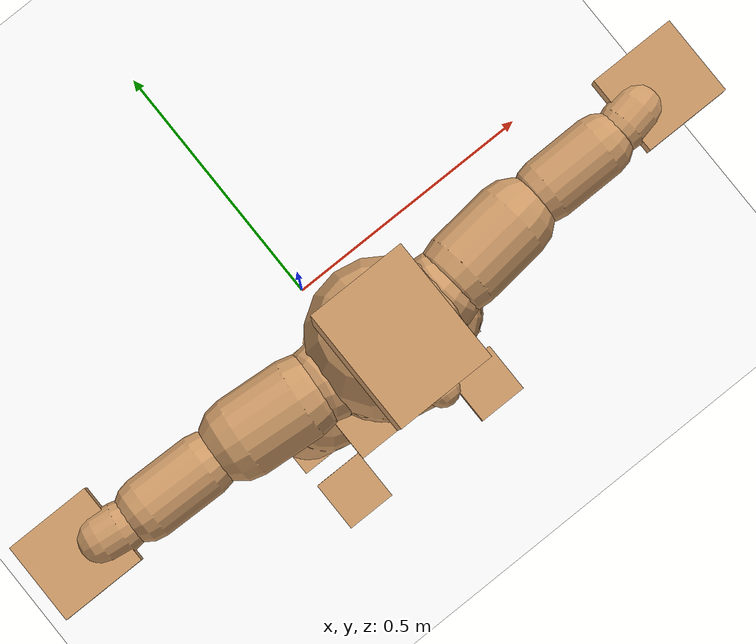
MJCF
<mujoco model="humanoid">
  <option integrator="implicitfast" />

  <visual>
    <global offwidth="1280" offheight="960" />
    <headlight active="1" ambient="0.34 0.34 0.34" diffuse="0.5 0.5 0.5" />
  </visual>

  <default>
    <joint damping="2" stiffness="2" armature="0.01" limited="true" solimplimit="0 .99 .01" />
    <geom condim="1" friction="0.7 0.005 0.0001" solimp=".99 .99 .003" solref="0.015 1" margin="0.001" rgba="0.8 0.6 .4 1" />
    <default class="smplcontact">
      <geom condim="3" friction="1. 0.005 0.0001" solref="0.015 1" solimp="0.98 0.98 0.001" priority="1" />
    </default>
    <default class="stiff_medium">
      <joint stiffness="10" />
    </default>
    <default class="stiff_medium_higher">
      <joint stiffness="50" />
    </default>
    <default class="stiff_high">
      <joint stiffness="100" />
    </default>
  </default>

  <asset>
    <texture type="skybox" builtin="gradient" rgb1="0.99 0.99 0.99" rgb2="0.608 0.828 0.892" width="100" />
    <texture builtin="flat" height="1278" mark="cross" markrgb="1 1 1" name="texgeom" random="0.01" rgb1="0.8 0.6 0.4" rgb2="0.8 0.6 0.4" type="cube" width="127" />
    <texture name="texplane" type="2d" builtin="checker" markrgb="1 1 1" rgb1="0.756 0.772 0.76" rgb2="0.6 0.6 0.6" width="100" height="100" />
    <material name="MatPlane" reflectance="0.5" texture="texplane" texrepeat="1 1" texuniform="true" />
    <material name="geom" texture="texgeom" texuniform="true" />
  </asset>

  <worldbody>
    <light name="tracking_light" pos="0 0 7" dir="0 0 -1" directional="true" cutoff="100" exponent="1" diffuse="1 1 1" specular="0.1 0.1 0.1" mode="trackcom" />
    <camera name="back" pos="0 3 2.4" xyaxes="-1 0 0 0 -1 2" mode="trackcom" />
    <camera name="side" pos="-3 0 2.4" xyaxes="0 -1 0 1 0 2" mode="trackcom" />
    <camera name="front_side" pos="-2.8 -2.8 0.8" xyaxes="0.5 -0.5 0 0.1 0.1 1" mode="trackcom" />
    <geom condim="3" name="floor" pos="0 0 0" rgba="1 1 1 1" size="100 100 .2" type="plane" material="MatPlane" />
    <body name="Pelvis" pos="-0.0018 -0.2233 1.27986" euler="90 0 0">
      <site name="Pelvis" size="0.01" />
      <freejoint name="Pelvis" />
      <geom type="box" pos="-0.0000 -0.0121 -0.0055" size="0.1069 0.0722 0.083" quat="1.0000 0.0000 0.0000 0.0000" density="3165.830099" name="Pelvis" />
      <body name="L_Hip" pos="0.0955625 -0.125675 -0.00935">
        <joint name="L_Hip_x" type="hinge" pos="0 0 0" axis="1 0 0" stiffness="17.19824030612245" range="-160.0 22.92" class="stiff_medium" damping="29.629361290924336" armature="0.022687051049198843"/>
        <joint name="L_Hip_y" type="hinge" pos="0 0 0" axis="0 1 0" stiffness="17.095561632653062" range="-70.0 70.0" class="stiff_medium" damping="16.759236135916318" armature="0.016429527259457153"/>
        <joint name="L_Hip_z" type="hinge" pos="0 0 0" axis="0 0 1" stiffness="17.10435142857143" range="-28.65 90.0" class="stiff_medium" damping="19.702841471961815" armature="0.02269609366308965"/>
        <geom type="capsule" density="2040.816327" fromto="0.0094875 -0.103125 -0.0012375 0.037675 -0.412775 -0.00495" size="0.0615" name="L_Hip" />
        <body name="L_Knee" pos="0.0471625 -0.5159 -0.0061875">
          <joint name="L_Knee_x" type="hinge" pos="0 0 0" axis="1 0 0" range="-5.16 171.89" damping="15.062760794577006" armature="0.021343797365827914" stiffness="3.321907163265306"/>
          <joint name="L_Knee_y" type="hinge" pos="0 0 0" axis="0 1 0" range="-4.58 6.88" damping="12.945965232871577" armature="0.015441578364462112" stiffness="3.3917763265306125"/>
          <joint name="L_Knee_z" type="hinge" pos="0 0 0" axis="0 0 1" range="-6.88 4.58" damping="15.006918060065544" armature="0.02138423024615954" stiffness="3.2910874489795923"/>
          <geom type="capsule" density="1234.567901" fromto="-0.0037125 -0.10945 -0.0119625 -0.0149875 -0.4378 -0.048125" size="0.0541" name="L_Knee" />
          <body name="L_Ankle" pos="-0.0187 -0.54725 -0.0600875">
            <joint name="L_Ankle_x" type="hinge" pos="0 0 0" axis="1 0 0" range="-45.84 45.84" class="stiff_medium" damping="8.859849432432505" armature="0.015857944517404375" stiffness="13.750018673469388"/>
            <joint name="L_Ankle_y" type="hinge" pos="0 0 0" axis="0 1 0" range="-74.48 22.92" class="stiff_medium" damping="4.399379468505368" armature="0.015640018623433522" stiffness="13.750011836734695"/>
            <joint name="L_Ankle_z" type="hinge" pos="0 0 0" axis="0 0 1" range="-4.58 4.58" class="stiff_medium" damping="8.387836414113991" armature="0.014213292870694269" stiffness="13.75"/>
            <geom type="box" pos="0.0320375 -0.0328625 0.033275" size="0.0483 0.0464 0.085" quat="1.0000 0.0000 0.0000 0.0000" density="449.071558" name="L_Ankle" class="smplcontact" />
            <body name="L_Toe" pos="0.0363 -0.076725 0.164038">
              <joint name="L_Toe_x" type="hinge" pos="0 0 0" axis="1 0 0" range="-91.67 22.92" armature="0.013386048586152648" damping="2.713360779989266" stiffness="2.75"/>
              <joint name="L_Toe_y" type="hinge" pos="0 0 0" axis="0 1 0" range="-4.58 4.58" armature="0.012385744586589299" damping="2.610011402776646" stiffness="2.75"/>
              <joint name="L_Toe_z" type="hinge" pos="0 0 0" axis="0 0 1" range="-4.58 4.58" armature="0.010363183740582413" damping="2.3874151413862497" stiffness="2.75"/>
              <geom type="box" pos="-0.004125 0.0075625 0.0341" size="0.0478 0.02 0.0496" quat="1.0000 0.0000 0.0000 0.0000" density="423.206892" name="L_Toe" class="smplcontact" />
            </body>
          </body>
        </body>
      </body>
      <body name="R_Hip" pos="-0.0930875 -0.124437 -0.0059125">
        <joint name="R_Hip_x" type="hinge" pos="0 0 0" axis="1 0 0" stiffness="17.19824030612245" range="-160.0 22.92" class="stiff_medium" damping="29.629361290924336" armature="0.022687051049198843"/>
        <joint name="R_Hip_y" type="hinge" pos="0 0 0" axis="0 1 0" stiffness="17.095561632653062" range="-70.0 70.0" class="stiff_medium" damping="16.759236135916318" armature="0.016429527259457153"/>
        <joint name="R_Hip_z" type="hinge" pos="0 0 0" axis="0 0 1" stiffness="17.10435142857143" range="-90.0 28.65" class="stiff_medium" damping="19.702841471961815" armature="0.02269609366308965"/>
        <geom type="capsule" density="2040.816327" fromto="-0.0105875 -0.105188 -0.002475 -0.042075 -0.420887 -0.0097625" size="0.0606" name="R_Hip" />
        <body name="R_Knee" pos="-0.0526625 -0.526075 -0.0122375">
          <joint name="R_Knee_x" type="hinge" pos="0 0 0" axis="1 0 0" range="-5.16 171.89" damping="15.062760794577006" armature="0.021343797365827914" stiffness="3.321907163265306"/>
          <joint name="R_Knee_y" type="hinge" pos="0 0 0" axis="0 1 0" range="-6.88 4.58" damping="12.945965232871577" armature="0.015441578364462112" stiffness="3.3917763265306125"/>
          <joint name="R_Knee_z" type="hinge" pos="0 0 0" axis="0 0 1" range="-4.58 6.88" damping="15.006918060065544" armature="0.02138423024615954" stiffness="3.2910874489795923"/>
          <geom type="capsule" density="1234.567901" fromto="0.0044 -0.109587 -0.0116875 0.017325 -0.438213 -0.046475" size="0.0541" name="R_Knee" />
          <body name="R_Ankle" pos="0.021725 -0.5478 -0.0581625">
            <joint name="R_Ankle_x" type="hinge" pos="0 0 0" axis="1 0 0" range="-45.84 45.84" class="stiff_medium" damping="8.859849432432505" armature="0.015857944517404375" stiffness="13.750018673469388"/>
            <joint name="R_Ankle_y" type="hinge" pos="0 0 0" axis="0 1 0" range="-22.92 74.48" class="stiff_medium" damping="4.399379468505368" armature="0.015640018623433522" stiffness="13.750011836734695"/>
            <joint name="R_Ankle_z" type="hinge" pos="0 0 0" axis="0 0 1" range="-4.58 4.58" class="stiff_medium" damping="8.387836414113991" armature="0.014213292870694269" stiffness="13.75"/>
            <geom type="box" pos="-0.02915 -0.023925 0.0352" size="0.0483 0.0478 0.0865" quat="1.0000 0.0000 0.0000 0.0000" density="434.700981" name="R_Ankle" class="smplcontact" />
            <body name="R_Toe" pos="-0.034925 -0.0661375 0.169538">
              <joint name="R_Toe_x" type="hinge" pos="0 0 0" axis="1 0 0" range="-91.67 22.92" armature="0.013386048586152648" damping="2.713360779989266" stiffness="2.75"/>
              <joint name="R_Toe_y" type="hinge" pos="0 0 0" axis="0 1 0" range="-4.58 4.58" armature="0.012385744586589299" damping="2.610011402776646" stiffness="2.75"/>
              <joint name="R_Toe_z" type="hinge" pos="0 0 0" axis="0 0 1" range="-4.58 4.58" armature="0.010363183740582413" damping="2.3874151413862497" stiffness="2.75"/>
              <geom type="box" pos="0.005775 0.0061875 0.0312125" size="0.0479 0.0216 0.0493" quat="1.0000 0.0000 0.0000 0.0000" density="407.384095" name="R_Toe" class="smplcontact" />
            </body>
          </body>
        </body>
      </body>
      <body name="Torso" pos="-0.0025 0.109 -0.0267">
        <joint name="Torso_x" type="hinge" pos="0 0 0" axis="1 0 0" range="-25.78 57.3" class="stiff_medium" damping="12.833128643120638" armature="0.0083898677557267" stiffness="8.724237142857143"/>
        <joint name="Torso_y" type="hinge" pos="0 0 0" axis="0 1 0" range="-57.3 57.3" class="stiff_high" damping="9.641007877053582" armature="0.0026152511802961754" stiffness="88.85287346938776"/>
        <joint name="Torso_z" type="hinge" pos="0 0 0" axis="0 0 1" range="-34.38 34.38" class="stiff_high" damping="15.256621848072813" armature="0.006404603814601962" stiffness="90.85827826086955"/>
        <geom type="capsule" density="2040.816327" fromto="0.0025 0.0608 0.0005 0.003 0.0743 0.0006" size="0.0769" name="Torso" />
        <body name="Spine" pos="0.0055 0.1352 0.0011">
          <joint name="Spine_x" type="hinge" pos="0 0 0" axis="1 0 0" stiffness="8.524132708333333" range="-25.78 57.3" class="stiff_medium" damping="12.593328186154574" armature="0.008268911088118518"/>
          <joint name="Spine_y" type="hinge" pos="0 0 0" axis="0 1 0" stiffness="8.372724772727274" range="-57.3 57.3" class="stiff_high" damping="3.7058359647278705" armature="0.002562864197858745"/>
          <joint name="Spine_z" type="hinge" pos="0 0 0" axis="0 0 1" stiffness="17.091765581395343" range="-34.38 34.38" class="stiff_high" damping="7.912330782724081" armature="0.005087324565503504"/>
          <geom type="capsule" density="2040.816327" fromto="0.0007 0.0238 0.0114 0.0008 0.0291 0.014" size="0.0755" name="Spine" />
          <body name="Chest" pos="0.0015 0.0529 0.0254">
            <joint name="Chest_x" type="hinge" pos="0 0 0" axis="1 0 0" stiffness="8.200278372093024" range="-25.78 57.3" class="stiff_medium" damping="12.319816615498848" armature="0.008226164178146714"/>
            <joint name="Chest_y" type="hinge" pos="0 0 0" axis="0 1 0" stiffness="6.66116392857143" range="-57.3 57.3" class="stiff_high" damping="3.2862373670032503" armature="0.002533189992228513"/>
            <joint name="Chest_z" type="hinge" pos="0 0 0" axis="0 0 1" stiffness="16.64932651162791" range="-34.38 34.38" class="stiff_high" damping="7.3605142625327895" armature="0.0045194662788371"/>
            <geom type="capsule" density="2040.816327" fromto="-0.0009 0.0682 -0.0173 -0.001 0.0833 -0.0212" size="0.1002" name="Chest" />
            <body name="Neck" pos="-0.0028 0.2139 -0.0429">
              <joint name="Neck_x" type="hinge" pos="0 0 0" axis="1 0 0" range="-28.65 57.3" class="stiff_medium_higher" damping="10.000000000000032" armature="0.010000000000000064" stiffness="50.0"/>
              <joint name="Neck_y" type="hinge" pos="0 0 0" axis="0 1 0" range="-40.11 40.11" class="stiff_medium_higher" damping="10.0" armature="0.01" stiffness="50.0"/>
              <joint name="Neck_z" type="hinge" pos="0 0 0" axis="0 0 1" range="-40.11 40.11" class="stiff_medium_higher" damping="10.000000000000025" armature="0.01000000000000005" stiffness="50.0"/>
              <geom type="capsule" density="1000" fromto="0.001 0.013 0.0103 0.0041 0.052 0.0411" size="0.0436" name="Neck" />
              <body name="Head" pos="0.0052 0.065 0.0513">
                <joint name="Head_x" type="hinge" pos="0 0 0" axis="1 0 0" range="-28.65 57.3" class="stiff_medium_higher" damping="2.000000000000006" armature="0.010000000000000064" stiffness="50.0"/>
                <joint name="Head_y" type="hinge" pos="0 0 0" axis="0 1 0" range="-40.11 40.11" class="stiff_medium_higher" damping="2.0" armature="0.01" stiffness="50.0"/>
                <joint name="Head_z" type="hinge" pos="0 0 0" axis="0 0 1" range="-40.11 40.11" class="stiff_medium_higher" damping="2.0000000000000036" armature="0.010000000000000038" stiffness="50.0"/>
                <geom type="box" pos="-0.0042 0.0876 -0.0116" size="0.0606 0.1154 0.076" quat="1.0000 0.0000 0.0000 0.0000" density="1018.069894" name="Head" />
                <geom type="capsule" name="nose" size="0.02 0.01" pos="0 0.07 0.05" quat="1 0 0 0" mass="0" contype="0" conaffinity="0" />
              </body>
            </body>
            <body name="L_Thorax" pos="0.04334 0.066935 -0.018755">
              <joint name="L_Thorax_x" type="hinge" pos="0 0 0" axis="1 0 0" range="-10.89 4.58" class="stiff_medium_higher" damping="8.434703621562761" armature="0.004456108006307092" stiffness="19.956940306122444"/>
              <joint name="L_Thorax_y" type="hinge" pos="0 0 0" axis="0 1 0" range="-28.65 17.19" class="stiff_medium_higher" damping="6.022763730189365" armature="0.0023084620474975955" stiffness="19.641693367346935"/>
              <joint name="L_Thorax_z" type="hinge" pos="0 0 0" axis="0 0 1" range="-31.51 40.11" class="stiff_medium_higher" damping="6.0206596523268665" armature="0.0023064402545495094" stiffness="19.64517755102041"/>
              <geom type="capsule" density="1000" fromto="0.01001 0.003355 -0.00099 0.04004 0.01342 -0.003905" size="0.0521" name="L_Thorax" />
              <body name="L_Shoulder" pos="0.05005 0.016775 -0.004895">
                <joint name="L_Shoulder_x" type="hinge" pos="0 0 0" axis="1 0 0" range="-97.4 97.4" class="stiff_medium" damping="2.750732619270327" armature="0.005207580254125512" stiffness="4.036066215805471"/>
                <joint name="L_Shoulder_y" type="hinge" pos="0 0 0" axis="0 1 0" range="-108.86 80.21" class="stiff_medium" damping="1.829876722109635" armature="0.0023536822566645396" stiffness="3.9517852040816326"/>
                <joint name="L_Shoulder_z" type="hinge" pos="0 0 0" axis="0 0 1" range="-97.4 85.94" class="stiff_medium" damping="1.829909535734246" armature="0.0023507489222583896" stiffness="3.9568582653061224"/>
                <geom type="capsule" density="1000" fromto="0.028545 -0.00143 -0.003025 0.114235 -0.00561 -0.0121" size="0.0517" name="L_Shoulder" />
                <body name="L_Elbow" pos="0.14278 -0.00704 -0.015125">
                  <joint name="L_Elbow_x" type="hinge" pos="0 0 0" axis="1 0 0" range="-17.19 4.58" damping="2.6383809861162275" armature="0.006602890217626931" stiffness="0.8433948163265306"/>
                  <joint name="L_Elbow_y" type="hinge" pos="0 0 0" axis="0 1 0" range="-180.0 17.19" damping="1.6493311800762034" armature="0.0025828362461048178" stiffness="0.842575551020408"/>
                  <joint name="L_Elbow_z" type="hinge" pos="0 0 0" axis="0 0 1" range="-100.84 4.58" damping="1.6457692537144128" armature="0.0025674453810837178" stiffness="0.8439693265306122"/>
                  <geom type="capsule" density="1000" fromto="0.02739 0.00099 -0.00011 0.10967 0.00396 -0.000495" size="0.0405" name="L_Elbow" />
                  <body name="L_Wrist" pos="0.13706 0.00495 -0.00066">
                    <joint name="L_Wrist_x" type="hinge" pos="0 0 0" axis="1 0 0" range="-180.0 22.92" armature="0.0074618343952390885" damping="1.2279494204587658" stiffness="1.0103814285714288"/>
                    <joint name="L_Wrist_y" type="hinge" pos="0 0 0" axis="0 1 0" range="-17.19 17.19" armature="0.003664915616612734" damping="0.8549575346764083" stiffness="0.9972294897959184"/>
                    <joint name="L_Wrist_z" type="hinge" pos="0 0 0" axis="0 0 1" range="-22.92 22.92" armature="0.003441422269276174" damping="0.8306797080467456" stiffness="1.002534306122449"/>
                    <geom type="capsule" density="1000" fromto="0.00924 -0.00088 -0.00165 0.03696 -0.003575 -0.0066" size="0.0318" name="L_Wrist" class="smplcontact" />
                    <body name="L_Hand" pos="0.0462 -0.00451 -0.008195">
                      <joint name="L_Hand_x" type="hinge" pos="0 0 0" axis="1 0 0" range="-17.19 17.19" armature="0.009696126030368896" damping="1.4605299472044921" stiffness="1.0999999999999999"/>
                      <joint name="L_Hand_y" type="hinge" pos="0 0 0" axis="0 1 0" range="-51.57 51.57" armature="0.006325063576496694" damping="1.1796245109479848" stiffness="1.0999999999999999"/>
                      <joint name="L_Hand_z" type="hinge" pos="0 0 0" axis="0 0 1" range="-91.67 91.67" armature="0.005426460820316714" damping="1.0926213344382751" stiffness="1.0999999999999999"/>
                      <geom type="box" pos="0.027115 0.00055 -0.00319" size="0.0585 0.0158 0.0538" quat="1.0000 0.0000 0.0000 0.0000" density="400.552564" name="L_Hand" class="smplcontact" />
                    </body>
                  </body>
                </body>
              </body>
            </body>
            <body name="R_Thorax" pos="-0.04499 0.06534 -0.02123">
              <joint name="R_Thorax_x" type="hinge" pos="0 0 0" axis="1 0 0" range="-10.89 4.58" class="stiff_medium_higher" damping="8.434703621562761" armature="0.004456108006307092" stiffness="19.956940306122444"/>
              <joint name="R_Thorax_y" type="hinge" pos="0 0 0" axis="0 1 0" range="-17.19 28.65" class="stiff_medium_higher" damping="6.022763730189365" armature="0.0023084620474975955" stiffness="19.641693367346935"/>
              <joint name="R_Thorax_z" type="hinge" pos="0 0 0" axis="0 0 1" range="-40.11 31.51" class="stiff_medium_higher" damping="6.0206596523268665" armature="0.0023064402545495094" stiffness="19.64517755102041"/>
              <geom type="capsule" density="1000" fromto="-0.01056 0.003575 -0.00099 -0.04224 0.0143 -0.004015" size="0.0511" name="R_Thorax" />
              <body name="R_Shoulder" pos="-0.0528 0.01793 -0.005005">
                <joint name="R_Shoulder_x" type="hinge" pos="0 0 0" axis="1 0 0" range="-97.4 97.4" class="stiff_medium" damping="2.750732619270327" armature="0.005207580254125512" stiffness="4.036066215805471"/>
                <joint name="R_Shoulder_y" type="hinge" pos="0 0 0" axis="0 1 0" range="-80.21 108.86" class="stiff_medium" damping="1.829876722109635" armature="0.0023536822566645396" stiffness="3.9517852040816326"/>
                <joint name="R_Shoulder_z" type="hinge" pos="0 0 0" axis="0 0 1" range="-85.94 97.4" class="stiff_medium" damping="1.829909535734246" armature="0.0023507489222583896" stiffness="3.9568582653061224"/>
                <geom type="capsule" density="1000" fromto="-0.027885 -0.001485 -0.002365 -0.11165 -0.005885 -0.009405" size="0.0531" name="R_Shoulder" />
                <body name="R_Elbow" pos="-0.139535 -0.007315 -0.01177">
                  <joint name="R_Elbow_x" type="hinge" pos="0 0 0" axis="1 0 0" range="-17.19 4.58" damping="2.6383809861162275" armature="0.006602890217626931" stiffness="0.8433948163265306"/>
                  <joint name="R_Elbow_y" type="hinge" pos="0 0 0" axis="0 1 0" range="-17.19 180.0" damping="1.6493311800762034" armature="0.0025828362461048178" stiffness="0.842575551020408"/>
                  <joint name="R_Elbow_z" type="hinge" pos="0 0 0" axis="0 0 1" range="-4.58 100.84" damping="1.6457692537144128" armature="0.0025674453810837178" stiffness="0.8439693265306122"/>
                  <geom type="capsule" density="1000" fromto="-0.028105 0.00088 -0.000605 -0.11231 0.00341 -0.00242" size="0.0408" name="R_Elbow" />
                  <body name="R_Wrist" pos="-0.140415 0.00429 -0.00308">
                    <joint name="R_Wrist_x" type="hinge" pos="0 0 0" axis="1 0 0" range="-180.0 22.92" armature="0.0074618343952390885" damping="1.2279494204587658" stiffness="1.0103814285714288"/>
                    <joint name="R_Wrist_y" type="hinge" pos="0 0 0" axis="0 1 0" range="-17.19 17.19" armature="0.003664915616612734" damping="0.8549575346764083" stiffness="0.9972294897959184"/>
                    <joint name="R_Wrist_z" type="hinge" pos="0 0 0" axis="0 0 1" range="-22.92 22.92" armature="0.003441422269276174" damping="0.8306797080467456" stiffness="1.002534306122449"/>
                    <geom type="capsule" density="1000" fromto="-0.009295 -0.00066 -0.001155 -0.037235 -0.002695 -0.004565" size="0.0326" name="R_Wrist" class="smplcontact" />
                    <body name="R_Hand" pos="-0.04653 -0.003355 -0.005665">
                      <joint name="R_Hand_x" type="hinge" pos="0 0 0" axis="1 0 0" range="-17.19 17.19" armature="0.009696126030368896" damping="1.4605299472044921" stiffness="1.0999999999999999"/>
                      <joint name="R_Hand_y" type="hinge" pos="0 0 0" axis="0 1 0" range="-51.57 51.57" armature="0.006325063576496694" damping="1.1796245109479848" stiffness="1.0999999999999999"/>
                      <joint name="R_Hand_z" type="hinge" pos="0 0 0" axis="0 0 1" range="-91.67 91.67" armature="0.005426460820316714" damping="1.0926213344382751" stiffness="1.0999999999999999"/>
                      <geom type="box" pos="-0.02541 -0.000495 -0.004345" size="0.0569 0.0164 0.0546" quat="1.0000 0.0000 0.0000 0.0000" density="403.679611" name="R_Hand" class="smplcontact" />
                    </body>
                  </body>
                </body>
              </body>
            </body>
          </body>
        </body>
      </body>
    </body>
  </worldbody>
  <actuator>
    <general name="L_Hip_x" joint="L_Hip_x" biastype="affine" gainprm="494.15714895193184" biasprm="-370.3206974542467 -309.5683255102041 -3.950581505456578" ctrllimited="true" ctrlrange="-1 1" forcerange="-619.1366510204082 619.1366510204082" />
    <general name="L_Hip_y" joint="L_Hip_y" biastype="affine" gainprm="375.9510358389407" biasprm="0.0 -307.72010938775514 -3.3518472271832636" ctrllimited="true" ctrlrange="-1 1" forcerange="-615.4402187755103 615.4402187755103" />
    <general name="L_Hip_z" joint="L_Hip_z" biastype="affine" gainprm="318.78232268102033" biasprm="164.83182045074247 -307.8783257142857 -3.940568294392363" ctrllimited="true" ctrlrange="-1 1" forcerange="-615.7566514285714 615.7566514285714" />
    <general name="L_Knee_x" joint="L_Knee_x" biastype="affine" gainprm="461.92695293520586" biasprm="435.00186875395013 -298.9716446938775 -3.7656901986442515" ctrllimited="true" ctrlrange="-1 1" forcerange="-597.943289387755 597.943289387755" />
    <general name="L_Knee_y" joint="L_Knee_y" biastype="affine" gainprm="30.528235525488515" biasprm="6.1269582642778 -305.25986938775515 -3.2364913082178943" ctrllimited="true" ctrlrange="-1 1" forcerange="-610.5197387755103 610.5197387755103" />
    <general name="L_Knee_z" joint="L_Knee_z" biastype="affine" gainprm="29.621968875582738" biasprm="-5.945072287420619 -296.1978704081633 -3.751729515016386" ctrllimited="true" ctrlrange="-1 1" forcerange="-592.3957408163266 592.3957408163266" />
    <general name="L_Ankle_x" joint="L_Ankle_x" biastype="affine" gainprm="99.00742693676564" biasprm="0.0 -123.7501680612245 -2.9532831441441685" ctrllimited="true" ctrlrange="-1 1" forcerange="-247.500336122449 247.500336122449" />
    <general name="L_Ankle_y" joint="L_Ankle_y" biastype="affine" gainprm="105.18453958139726" biasprm="-55.680850727072304 -123.75010653061226 -2.9329196456702458" ctrllimited="true" ctrlrange="-1 1" forcerange="-247.5002130612245 247.5002130612245" />
    <general name="L_Ankle_z" joint="L_Ankle_z" biastype="affine" gainprm="9.89208986799086" biasprm="0.0 -123.75 -2.79594547137133" ctrllimited="true" ctrlrange="-1 1" forcerange="-247.5 247.5" />
    <general name="L_Toe_x" joint="L_Toe_x" biastype="affine" gainprm="98.99865309808496" biasprm="-59.39573610693202 -99.0 -1.0853443119957065" ctrllimited="true" ctrlrange="-1 1" forcerange="-198.0 198.0" />
    <general name="L_Toe_y" joint="L_Toe_y" biastype="affine" gainprm="7.913671894392689" biasprm="0.0 -99.0 -1.0440045611106583" ctrllimited="true" ctrlrange="-1 1" forcerange="-198.0 198.0" />
    <general name="L_Toe_z" joint="L_Toe_z" biastype="affine" gainprm="7.913671894392689" biasprm="0.0 -99.0 -0.9549660565545" ctrllimited="true" ctrlrange="-1 1" forcerange="-198.0 198.0" />
    <general name="R_Hip_x" joint="R_Hip_x" biastype="affine" gainprm="494.15714895193184" biasprm="-370.3206974542467 -309.5683255102041 -3.950581505456578" ctrllimited="true" ctrlrange="-1 1" forcerange="-619.1366510204082 619.1366510204082" />
    <general name="R_Hip_y" joint="R_Hip_y" biastype="affine" gainprm="375.9510358389407" biasprm="0.0 -307.72010938775514 -3.3518472271832636" ctrllimited="true" ctrlrange="-1 1" forcerange="-615.4402187755103 615.4402187755103" />
    <general name="R_Hip_z" joint="R_Hip_z" biastype="affine" gainprm="318.78232268102033" biasprm="-164.83182045074247 -307.8783257142857 -3.940568294392363" ctrllimited="true" ctrlrange="-1 1" forcerange="-615.7566514285714 615.7566514285714" />
    <general name="R_Knee_x" joint="R_Knee_x" biastype="affine" gainprm="461.92695293520586" biasprm="435.00186875395013 -298.9716446938775 -3.7656901986442515" ctrllimited="true" ctrlrange="-1 1" forcerange="-597.943289387755 597.943289387755" />
    <general name="R_Knee_y" joint="R_Knee_y" biastype="affine" gainprm="30.528235525488515" biasprm="-6.1269582642778 -305.25986938775515 -3.2364913082178943" ctrllimited="true" ctrlrange="-1 1" forcerange="-610.5197387755103 610.5197387755103" />
    <general name="R_Knee_z" joint="R_Knee_z" biastype="affine" gainprm="29.621968875582738" biasprm="5.945072287420619 -296.1978704081633 -3.751729515016386" ctrllimited="true" ctrlrange="-1 1" forcerange="-592.3957408163266 592.3957408163266" />
    <general name="R_Ankle_x" joint="R_Ankle_x" biastype="affine" gainprm="99.00742693676564" biasprm="0.0 -123.7501680612245 -2.9532831441441685" ctrllimited="true" ctrlrange="-1 1" forcerange="-247.500336122449 247.500336122449" />
    <general name="R_Ankle_y" joint="R_Ankle_y" biastype="affine" gainprm="105.18453958139726" biasprm="55.680850727072304 -123.75010653061226 -2.9329196456702458" ctrllimited="true" ctrlrange="-1 1" forcerange="-247.5002130612245 247.5002130612245" />
    <general name="R_Ankle_z" joint="R_Ankle_z" biastype="affine" gainprm="9.89208986799086" biasprm="0.0 -123.75 -2.79594547137133" ctrllimited="true" ctrlrange="-1 1" forcerange="-247.5 247.5" />
    <general name="R_Toe_x" joint="R_Toe_x" biastype="affine" gainprm="98.99865309808496" biasprm="-59.39573610693202 -99.0 -1.0853443119957065" ctrllimited="true" ctrlrange="-1 1" forcerange="-198.0 198.0" />
    <general name="R_Toe_y" joint="R_Toe_y" biastype="affine" gainprm="7.913671894392689" biasprm="0.0 -99.0 -1.0440045611106583" ctrllimited="true" ctrlrange="-1 1" forcerange="-198.0 198.0" />
    <general name="R_Toe_z" joint="R_Toe_z" biastype="affine" gainprm="7.913671894392689" biasprm="0.0 -99.0 -0.9549660565545" ctrllimited="true" ctrlrange="-1 1" forcerange="-198.0 198.0" />
    <general name="Torso_x" joint="Torso_x" biastype="affine" gainprm="151.80377221252243" biasprm="57.593342563056154 -209.38169142857143 -3.4221676381655035" ctrllimited="true" ctrlrange="-1 1" forcerange="-314.07253714285713 314.07253714285713" />
    <general name="Torso_y" joint="Torso_y" biastype="affine" gainprm="213.26260438991383" biasprm="0.0 -213.24689632653062 -1.9282015754107165" ctrllimited="true" ctrlrange="-1 1" forcerange="-319.8703444897959 319.8703444897959" />
    <general name="Torso_z" joint="Torso_z" biastype="affine" gainprm="130.84555825179245" biasprm="0.0 -218.05986782608693 -3.0513243696145627" ctrllimited="true" ctrlrange="-1 1" forcerange="-327.0898017391304 327.0898017391304" />
    <general name="Spine_x" joint="Spine_x" biastype="affine" gainprm="148.32190812518058" biasprm="56.272346462514335 -204.579185 -3.35822084964122" ctrllimited="true" ctrlrange="-1 1" forcerange="-306.86877749999996 306.86877749999996" />
    <general name="Spine_y" joint="Spine_y" biastype="affine" gainprm="200.96019646308363" biasprm="0.0 -200.94539454545458 -1.8529179823639352" ctrllimited="true" ctrlrange="-1 1" forcerange="-301.41809181818184 301.41809181818184" />
    <general name="Spine_z" joint="Spine_z" biastype="affine" gainprm="123.06977700949903" biasprm="0.0 -205.10118697674412 -2.6374435942413603" ctrllimited="true" ctrlrange="-1 1" forcerange="-307.6517804651162 307.6517804651162" />
    <general name="Chest_x" joint="Chest_x" biastype="affine" gainprm="142.68676672729774" biasprm="54.13441125715483 -196.80668093023257 -3.2852844307996927" ctrllimited="true" ctrlrange="-1 1" forcerange="-295.21002139534886 295.21002139534886" />
    <general name="Chest_y" joint="Chest_y" biastype="affine" gainprm="159.87971038041" biasprm="0.0 -159.8679342857143 -1.6431186835016252" ctrllimited="true" ctrlrange="-1 1" forcerange="-239.80190142857145 239.80190142857145" />
    <general name="Chest_z" joint="Chest_z" biastype="affine" gainprm="119.88398105429127" biasprm="0.0 -199.7919181395349 -2.4535047541775965" ctrllimited="true" ctrlrange="-1 1" forcerange="-299.68787720930237 299.68787720930237" />
    <general name="Neck_x" joint="Neck_x" biastype="affine" gainprm="27.00198885760427" biasprm="9.000662952534757 -36.0 -0.8000000000000025" ctrllimited="true" ctrlrange="-1 1" forcerange="-72.0 72.0" />
    <general name="Neck_y" joint="Neck_y" biastype="affine" gainprm="25.20185626709732" biasprm="0.0 -36.0 -0.8" ctrllimited="true" ctrlrange="-1 1" forcerange="-72.0 72.0" />
    <general name="Neck_z" joint="Neck_z" biastype="affine" gainprm="25.20185626709732" biasprm="0.0 -36.0 -0.800000000000002" ctrllimited="true" ctrlrange="-1 1" forcerange="-72.0 72.0" />
    <general name="Head_x" joint="Head_x" biastype="affine" gainprm="18.001325905069514" biasprm="6.000441968356505 -24.0 -0.8000000000000025" ctrllimited="true" ctrlrange="-1 1" forcerange="-48.0 48.0" />
    <general name="Head_y" joint="Head_y" biastype="affine" gainprm="16.801237511398213" biasprm="0.0 -24.0 -0.8" ctrllimited="true" ctrlrange="-1 1" forcerange="-48.0 48.0" />
    <general name="Head_z" joint="Head_z" biastype="affine" gainprm="16.801237511398213" biasprm="0.0 -24.0 -0.8000000000000015" ctrllimited="true" ctrlrange="-1 1" forcerange="-48.0 48.0" />
    <general name="L_Thorax_x" joint="L_Thorax_x" biastype="affine" gainprm="6.466106980153143" biasprm="-2.6374360080650514 -47.89665673469387 -0.6747762897250209" ctrllimited="true" ctrlrange="-1 1" forcerange="-95.79331346938774 95.79331346938774" />
    <general name="L_Thorax_y" joint="L_Thorax_y" biastype="affine" gainprm="18.857414593762904" biasprm="-4.714353648440726 -47.140064081632644 -0.48182109841514925" ctrllimited="true" ctrlrange="-1 1" forcerange="-94.28012816326529 94.28012816326529" />
    <general name="L_Thorax_z" joint="L_Thorax_z" biastype="affine" gainprm="29.46787972505706" biasprm="3.538449673771163 -47.14842612244898 -0.4816527721861493" ctrllimited="true" ctrlrange="-1 1" forcerange="-94.29685224489796 94.29685224489796" />
    <general name="L_Shoulder_x" joint="L_Shoulder_x" biastype="affine" gainprm="32.93334506047744" biasprm="0.0 -19.373117835866264 -0.7335286984720873" ctrllimited="true" ctrlrange="-1 1" forcerange="-38.74623567173253 38.74623567173253" />
    <general name="L_Shoulder_y" joint="L_Shoulder_y" biastype="affine" gainprm="31.297133640991394" biasprm="-4.74249155770034 -18.968568979591836 -0.4879671258959027" ctrllimited="true" ctrlrange="-1 1" forcerange="-37.93713795918367 37.93713795918367" />
    <general name="L_Shoulder_z" joint="L_Shoulder_z" biastype="affine" gainprm="30.387595059587213" biasprm="-1.8994318718384982 -18.992919673469387 -0.487975876195799" ctrllimited="true" ctrlrange="-1 1" forcerange="-37.985839346938775 37.985839346938775" />
    <general name="L_Elbow_x" joint="L_Elbow_x" biastype="affine" gainprm="5.768185641845626" biasprm="-3.3411493313584466 -30.3622133877551 -0.42214095777859645" ctrllimited="true" ctrlrange="-1 1" forcerange="-60.7244267755102 60.7244267755102" />
    <general name="L_Elbow_y" joint="L_Elbow_y" biastype="affine" gainprm="52.19676802931011" biasprm="-43.09628177317298 -30.33271983673469 -0.26389298881219253" ctrllimited="true" ctrlrange="-1 1" forcerange="-60.66543967346938 60.66543967346938" />
    <general name="L_Elbow_z" joint="L_Elbow_z" biastype="affine" gainprm="27.951141407994328" biasprm="-25.522451830141666 -30.382895755102037 -0.26332308059430604" ctrllimited="true" ctrlrange="-1 1" forcerange="-60.765791510204075 60.765791510204075" />
    <general name="L_Wrist_x" joint="L_Wrist_x" biastype="affine" gainprm="10.735167645580283" biasprm="-8.310073594361082 -6.062288571428573 -0.49117976818350634" ctrllimited="true" ctrlrange="-1 1" forcerange="-12.124577142857145 12.124577142857145" />
    <general name="L_Wrist_y" joint="L_Wrist_y" biastype="affine" gainprm="1.7951453047962525" biasprm="0.0 -5.9833769387755105 -0.34198301387056335" ctrllimited="true" ctrlrange="-1 1" forcerange="-11.966753877551021 11.966753877551021" />
    <general name="L_Wrist_z" joint="L_Wrist_z" biastype="affine" gainprm="2.4062595700697247" biasprm="0.0 -6.015205836734694 -0.33227188321869827" ctrllimited="true" ctrlrange="-1 1" forcerange="-12.030411673469388 12.030411673469388" />
    <general name="L_Hand_x" joint="L_Hand_x" biastype="affine" gainprm="1.9801458495576467" biasprm="0.0 -6.6 -0.5842119788817969" ctrllimited="true" ctrlrange="-1 1" forcerange="-13.2 13.2" />
    <general name="L_Hand_y" joint="L_Hand_y" biastype="affine" gainprm="5.940437548672939" biasprm="0.0 -6.6 -0.47184980437919394" ctrllimited="true" ctrlrange="-1 1" forcerange="-13.2 13.2" />
    <general name="L_Hand_z" joint="L_Hand_z" biastype="affine" gainprm="10.55962594700113" biasprm="0.0 -6.6 -0.43704853377531006" ctrllimited="true" ctrlrange="-1 1" forcerange="-13.2 13.2" />
    <general name="R_Thorax_x" joint="R_Thorax_x" biastype="affine" gainprm="6.466106980153143" biasprm="-2.6374360080650514 -47.89665673469387 -0.6747762897250209" ctrllimited="true" ctrlrange="-1 1" forcerange="-95.79331346938774 95.79331346938774" />
    <general name="R_Thorax_y" joint="R_Thorax_y" biastype="affine" gainprm="18.857414593762904" biasprm="4.714353648440723 -47.140064081632644 -0.48182109841514925" ctrllimited="true" ctrlrange="-1 1" forcerange="-94.28012816326529 94.28012816326529" />
    <general name="R_Thorax_z" joint="R_Thorax_z" biastype="affine" gainprm="29.46787972505706" biasprm="-3.538449673771163 -47.14842612244898 -0.4816527721861493" ctrllimited="true" ctrlrange="-1 1" forcerange="-94.29685224489796 94.29685224489796" />
    <general name="R_Shoulder_x" joint="R_Shoulder_x" biastype="affine" gainprm="32.93334506047744" biasprm="0.0 -19.373117835866264 -0.7335286984720873" ctrllimited="true" ctrlrange="-1 1" forcerange="-38.74623567173253 38.74623567173253" />
    <general name="R_Shoulder_y" joint="R_Shoulder_y" biastype="affine" gainprm="31.297133640991394" biasprm="4.74249155770034 -18.968568979591836 -0.4879671258959027" ctrllimited="true" ctrlrange="-1 1" forcerange="-37.93713795918367 37.93713795918367" />
    <general name="R_Shoulder_z" joint="R_Shoulder_z" biastype="affine" gainprm="30.387595059587213" biasprm="1.899431871838494 -18.992919673469387 -0.487975876195799" ctrllimited="true" ctrlrange="-1 1" forcerange="-37.985839346938775 37.985839346938775" />
    <general name="R_Elbow_x" joint="R_Elbow_x" biastype="affine" gainprm="5.768185641845626" biasprm="-3.3411493313584466 -30.3622133877551 -0.42214095777859645" ctrllimited="true" ctrlrange="-1 1" forcerange="-60.7244267755102 60.7244267755102" />
    <general name="R_Elbow_y" joint="R_Elbow_y" biastype="affine" gainprm="52.19676802931011" biasprm="43.09628177317298 -30.33271983673469 -0.26389298881219253" ctrllimited="true" ctrlrange="-1 1" forcerange="-60.66543967346938 60.66543967346938" />
    <general name="R_Elbow_z" joint="R_Elbow_z" biastype="affine" gainprm="27.951141407994328" biasprm="25.522451830141662 -30.382895755102037 -0.26332308059430604" ctrllimited="true" ctrlrange="-1 1" forcerange="-60.765791510204075 60.765791510204075" />
    <general name="R_Wrist_x" joint="R_Wrist_x" biastype="affine" gainprm="10.735167645580283" biasprm="-8.310073594361082 -6.062288571428573 -0.49117976818350634" ctrllimited="true" ctrlrange="-1 1" forcerange="-12.124577142857145 12.124577142857145" />
    <general name="R_Wrist_y" joint="R_Wrist_y" biastype="affine" gainprm="1.7951453047962525" biasprm="0.0 -5.9833769387755105 -0.34198301387056335" ctrllimited="true" ctrlrange="-1 1" forcerange="-11.966753877551021 11.966753877551021" />
    <general name="R_Wrist_z" joint="R_Wrist_z" biastype="affine" gainprm="2.4062595700697247" biasprm="0.0 -6.015205836734694 -0.33227188321869827" ctrllimited="true" ctrlrange="-1 1" forcerange="-12.030411673469388 12.030411673469388" />
    <general name="R_Hand_x" joint="R_Hand_x" biastype="affine" gainprm="1.9801458495576467" biasprm="0.0 -6.6 -0.5842119788817969" ctrllimited="true" ctrlrange="-1 1" forcerange="-13.2 13.2" />
    <general name="R_Hand_y" joint="R_Hand_y" biastype="affine" gainprm="5.940437548672939" biasprm="0.0 -6.6 -0.47184980437919394" ctrllimited="true" ctrlrange="-1 1" forcerange="-13.2 13.2" />
    <general name="R_Hand_z" joint="R_Hand_z" biastype="affine" gainprm="10.55962594700113" biasprm="0.0 -6.6 -0.43704853377531006" ctrllimited="true" ctrlrange="-1 1" forcerange="-13.2 13.2" />
  </actuator>
  <contact>
    <exclude body1="Torso" body2="Chest" />
    <exclude body1="Head" body2="Chest" />
    <exclude body1="R_Knee" body2="R_Toe" />
    <exclude body1="R_Knee" body2="L_Ankle" />
    <exclude body1="R_Knee" body2="L_Toe" />
    <exclude body1="L_Knee" body2="L_Toe" />
    <exclude body1="L_Knee" body2="R_Ankle" />
    <exclude body1="L_Knee" body2="R_Toe" />
    <exclude body1="L_Shoulder" body2="Chest" />
    <exclude body1="R_Shoulder" body2="Chest" />
  </contact>
  <sensor>
    <framelinvel name="sensor_Pelvis_framelinvel" objtype="xbody" objname="Pelvis" />
    <framelinvel name="sensor_L_Hip_framelinvel" objtype="xbody" objname="L_Hip" />
    <framelinvel name="sensor_L_Knee_framelinvel" objtype="xbody" objname="L_Knee" />
    <framelinvel name="sensor_L_Ankle_framelinvel" objtype="xbody" objname="L_Ankle" />
    <framelinvel name="sensor_L_Toe_framelinvel" objtype="xbody" objname="L_Toe" />
    <framelinvel name="sensor_R_Hip_framelinvel" objtype="xbody" objname="R_Hip" />
    <framelinvel name="sensor_R_Knee_framelinvel" objtype="xbody" objname="R_Knee" />
    <framelinvel name="sensor_R_Ankle_framelinvel" objtype="xbody" objname="R_Ankle" />
    <framelinvel name="sensor_R_Toe_framelinvel" objtype="xbody" objname="R_Toe" />
    <framelinvel name="sensor_Torso_framelinvel" objtype="xbody" objname="Torso" />
    <framelinvel name="sensor_Spine_framelinvel" objtype="xbody" objname="Spine" />
    <framelinvel name="sensor_Chest_framelinvel" objtype="xbody" objname="Chest" />
    <framelinvel name="sensor_Neck_framelinvel" objtype="xbody" objname="Neck" />
    <framelinvel name="sensor_Head_framelinvel" objtype="xbody" objname="Head" />
    <framelinvel name="sensor_L_Thorax_framelinvel" objtype="xbody" objname="L_Thorax" />
    <framelinvel name="sensor_L_Shoulder_framelinvel" objtype="xbody" objname="L_Shoulder" />
    <framelinvel name="sensor_L_Elbow_framelinvel" objtype="xbody" objname="L_Elbow" />
    <framelinvel name="sensor_L_Wrist_framelinvel" objtype="xbody" objname="L_Wrist" />
    <framelinvel name="sensor_L_Hand_framelinvel" objtype="xbody" objname="L_Hand" />
    <framelinvel name="sensor_R_Thorax_framelinvel" objtype="xbody" objname="R_Thorax" />
    <framelinvel name="sensor_R_Shoulder_framelinvel" objtype="xbody" objname="R_Shoulder" />
    <framelinvel name="sensor_R_Elbow_framelinvel" objtype="xbody" objname="R_Elbow" />
    <framelinvel name="sensor_R_Wrist_framelinvel" objtype="xbody" objname="R_Wrist" />
    <framelinvel name="sensor_R_Hand_framelinvel" objtype="xbody" objname="R_Hand" />
    <frameangvel name="sensor_Pelvis_frameangvel" objtype="xbody" objname="Pelvis" />
    <frameangvel name="sensor_L_Hip_frameangvel" objtype="xbody" objname="L_Hip" />
    <frameangvel name="sensor_L_Knee_frameangvel" objtype="xbody" objname="L_Knee" />
    <frameangvel name="sensor_L_Ankle_frameangvel" objtype="xbody" objname="L_Ankle" />
    <frameangvel name="sensor_L_Toe_frameangvel" objtype="xbody" objname="L_Toe" />
    <frameangvel name="sensor_R_Hip_frameangvel" objtype="xbody" objname="R_Hip" />
    <frameangvel name="sensor_R_Knee_frameangvel" objtype="xbody" objname="R_Knee" />
    <frameangvel name="sensor_R_Ankle_frameangvel" objtype="xbody" objname="R_Ankle" />
    <frameangvel name="sensor_R_Toe_frameangvel" objtype="xbody" objname="R_Toe" />
    <frameangvel name="sensor_Torso_frameangvel" objtype="xbody" objname="Torso" />
    <frameangvel name="sensor_Spine_frameangvel" objtype="xbody" objname="Spine" />
    <frameangvel name="sensor_Chest_frameangvel" objtype="xbody" objname="Chest" />
    <frameangvel name="sensor_Neck_frameangvel" objtype="xbody" objname="Neck" />
    <frameangvel name="sensor_Head_frameangvel" objtype="xbody" objname="Head" />
    <frameangvel name="sensor_L_Thorax_frameangvel" objtype="xbody" objname="L_Thorax" />
    <frameangvel name="sensor_L_Shoulder_frameangvel" objtype="xbody" objname="L_Shoulder" />
    <frameangvel name="sensor_L_Elbow_frameangvel" objtype="xbody" objname="L_Elbow" />
    <frameangvel name="sensor_L_Wrist_frameangvel" objtype="xbody" objname="L_Wrist" />
    <frameangvel name="sensor_L_Hand_frameangvel" objtype="xbody" objname="L_Hand" />
    <frameangvel name="sensor_R_Thorax_frameangvel" objtype="xbody" objname="R_Thorax" />
    <frameangvel name="sensor_R_Shoulder_frameangvel" objtype="xbody" objname="R_Shoulder" />
    <frameangvel name="sensor_R_Elbow_frameangvel" objtype="xbody" objname="R_Elbow" />
    <frameangvel name="sensor_R_Wrist_frameangvel" objtype="xbody" objname="R_Wrist" />
    <frameangvel name="sensor_R_Hand_frameangvel" objtype="xbody" objname="R_Hand" />
    <subtreelinvel name="Chest_subtreelinvel" body="Chest" />
    <gyro name="Pelvis_gyro" site="Pelvis" />
  </sensor>
</mujoco>
